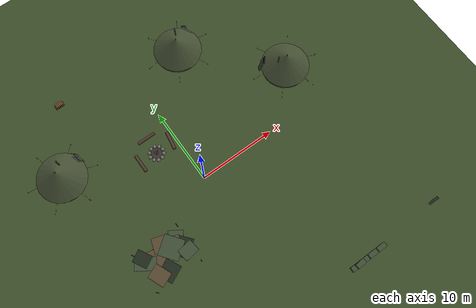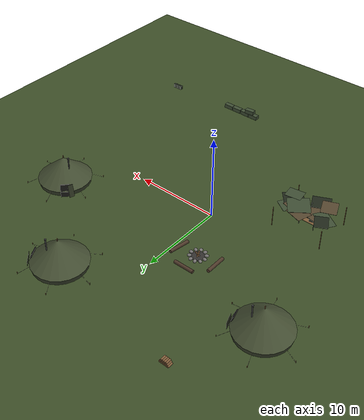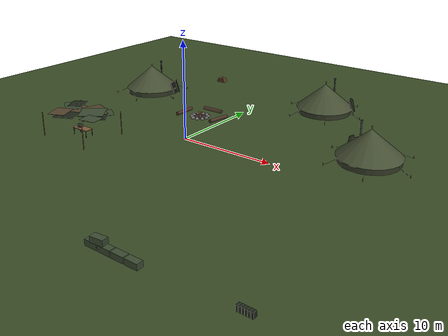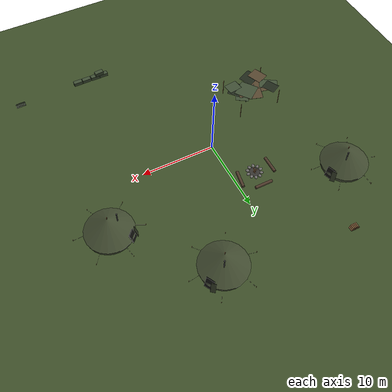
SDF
<sdf version="1.11">
 <world name="hive_base">
  <model name="ground_plane">
   <static>true</static>
   <link name="link">
    <collision name="collision">
     <geometry><plane><normal>0 0 1</normal><size>1000 1000</size></plane></geometry>
     <surface><friction><ode><mu>1.0</mu><mu2>1.0</mu2></ode></friction></surface>
    </collision>
    <visual name="visual">
     <geometry><plane><normal>0 0 1</normal><size>1000 1000</size></plane></geometry>
     <material>
      <ambient>0.23 0.3 0.15 1</ambient>
      <diffuse>0.23 0.3 0.15 1</diffuse>
      <specular>0.05 0.05 0.05 1</specular>
     </material>
    </visual>
   </link>
  </model>
  <model name="tent_1">
   <static>true</static>
   <pose>-14 10 0 0 0 0.3</pose>
   <link name="link">
    <visual name="v1">
     <pose>0 0 0.3 0 0 0</pose>
     <geometry><cylinder><radius>3</radius><length>0.6</length></cylinder></geometry>
     <material>
      <ambient>0.2 0.23 0.15 1</ambient>
      <diffuse>0.2 0.23 0.15 1</diffuse>
      <specular>0.05 0.05 0.05 1</specular>
     </material>
    </visual>
    <collision name="c1">
     <pose>0 0 0.3 0 0 0</pose>
     <geometry><cylinder><radius>3</radius><length>0.6</length></cylinder></geometry>
    </collision>
    <visual name="v2">
     <pose>0 0 1.9 0 0 0</pose>
     <geometry><cone><radius>3.15</radius><length>2.6</length></cone></geometry>
     <material>
      <ambient>0.27 0.31 0.2 1</ambient>
      <diffuse>0.27 0.31 0.2 1</diffuse>
      <specular>0.05 0.05 0.05 1</specular>
     </material>
    </visual>
    <collision name="c2">
     <pose>0 0 1.9 0 0 0</pose>
     <geometry><cylinder><radius>1.89</radius><length>2.6</length></cylinder></geometry>
    </collision>
    <visual name="v3">
     <pose>0 0 3.3 0 0 0</pose>
     <geometry><cylinder><radius>0.05</radius><length>0.4</length></cylinder></geometry>
     <material>
      <ambient>0.5 0.36 0.22 1</ambient>
      <diffuse>0.5 0.36 0.22 1</diffuse>
      <specular>0.05 0.05 0.05 1</specular>
     </material>
    </visual>
    <visual name="v4">
     <pose>1 0.6 3 0 0 0</pose>
     <geometry><cylinder><radius>0.07</radius><length>1.4</length></cylinder></geometry>
     <material>
      <ambient>0.25 0.25 0.25 1</ambient>
      <diffuse>0.25 0.25 0.25 1</diffuse>
      <specular>0.05 0.05 0.05 1</specular>
     </material>
    </visual>
    <visual name="v5">
     <pose>1 0.6 3.7 0 0 0</pose>
     <geometry><cylinder><radius>0.1</radius><length>0.12</length></cylinder></geometry>
     <material>
      <ambient>0.25 0.25 0.25 1</ambient>
      <diffuse>0.25 0.25 0.25 1</diffuse>
      <specular>0.05 0.05 0.05 1</specular>
     </material>
    </visual>
    <visual name="v6">
     <pose>2.95 0 0.7 0 -0.35 0</pose>
     <geometry><box><size>0.12 1.1 1.4</size></box></geometry>
     <material>
      <ambient>0.08 0.08 0.07 1</ambient>
      <diffuse>0.08 0.08 0.07 1</diffuse>
      <specular>0.05 0.05 0.05 1</specular>
     </material>
    </visual>
    <visual name="v7">
     <pose>3.15 0.65 0.75 0 -0.25 0.4</pose>
     <geometry><box><size>0.05 0.6 1.5</size></box></geometry>
     <material>
      <ambient>0.2 0.23 0.15 1</ambient>
      <diffuse>0.2 0.23 0.15 1</diffuse>
      <specular>0.05 0.05 0.05 1</specular>
     </material>
    </visual>
    <visual name="v8">
     <pose>3.204 1.85 0.3 0 1.166 3.665</pose>
     <geometry><cylinder><radius>0.01</radius><length>1.523</length></cylinder></geometry>
     <material>
      <ambient>0.6 0.6 0.5 1</ambient>
      <diffuse>0.6 0.6 0.5 1</diffuse>
      <specular>0.05 0.05 0.05 1</specular>
     </material>
     <cast_shadows>false</cast_shadows>
    </visual>
    <visual name="v9">
     <pose>3.811 2.2 0.1 0 0 0</pose>
     <geometry><cylinder><radius>0.03</radius><length>0.25</length></cylinder></geometry>
     <material>
      <ambient>0.5 0.36 0.22 1</ambient>
      <diffuse>0.5 0.36 0.22 1</diffuse>
      <specular>0.05 0.05 0.05 1</specular>
     </material>
     <cast_shadows>false</cast_shadows>
    </visual>
    <visual name="v10">
     <pose>0 3.7 0.3 0 1.166 4.712</pose>
     <geometry><cylinder><radius>0.01</radius><length>1.523</length></cylinder></geometry>
     <material>
      <ambient>0.6 0.6 0.5 1</ambient>
      <diffuse>0.6 0.6 0.5 1</diffuse>
      <specular>0.05 0.05 0.05 1</specular>
     </material>
     <cast_shadows>false</cast_shadows>
    </visual>
    <visual name="v11">
     <pose>0 4.4 0.1 0 0 0</pose>
     <geometry><cylinder><radius>0.03</radius><length>0.25</length></cylinder></geometry>
     <material>
      <ambient>0.5 0.36 0.22 1</ambient>
      <diffuse>0.5 0.36 0.22 1</diffuse>
      <specular>0.05 0.05 0.05 1</specular>
     </material>
     <cast_shadows>false</cast_shadows>
    </visual>
    <visual name="v12">
     <pose>-3.204 1.85 0.3 0 1.166 5.76</pose>
     <geometry><cylinder><radius>0.01</radius><length>1.523</length></cylinder></geometry>
     <material>
      <ambient>0.6 0.6 0.5 1</ambient>
      <diffuse>0.6 0.6 0.5 1</diffuse>
      <specular>0.05 0.05 0.05 1</specular>
     </material>
     <cast_shadows>false</cast_shadows>
    </visual>
    <visual name="v13">
     <pose>-3.811 2.2 0.1 0 0 0</pose>
     <geometry><cylinder><radius>0.03</radius><length>0.25</length></cylinder></geometry>
     <material>
      <ambient>0.5 0.36 0.22 1</ambient>
      <diffuse>0.5 0.36 0.22 1</diffuse>
      <specular>0.05 0.05 0.05 1</specular>
     </material>
     <cast_shadows>false</cast_shadows>
    </visual>
    <visual name="v14">
     <pose>-3.204 -1.85 0.3 0 1.166 6.807</pose>
     <geometry><cylinder><radius>0.01</radius><length>1.523</length></cylinder></geometry>
     <material>
      <ambient>0.6 0.6 0.5 1</ambient>
      <diffuse>0.6 0.6 0.5 1</diffuse>
      <specular>0.05 0.05 0.05 1</specular>
     </material>
     <cast_shadows>false</cast_shadows>
    </visual>
    <visual name="v15">
     <pose>-3.811 -2.2 0.1 0 0 0</pose>
     <geometry><cylinder><radius>0.03</radius><length>0.25</length></cylinder></geometry>
     <material>
      <ambient>0.5 0.36 0.22 1</ambient>
      <diffuse>0.5 0.36 0.22 1</diffuse>
      <specular>0.05 0.05 0.05 1</specular>
     </material>
     <cast_shadows>false</cast_shadows>
    </visual>
    <visual name="v16">
     <pose>-0 -3.7 0.3 0 1.166 7.854</pose>
     <geometry><cylinder><radius>0.01</radius><length>1.523</length></cylinder></geometry>
     <material>
      <ambient>0.6 0.6 0.5 1</ambient>
      <diffuse>0.6 0.6 0.5 1</diffuse>
      <specular>0.05 0.05 0.05 1</specular>
     </material>
     <cast_shadows>false</cast_shadows>
    </visual>
    <visual name="v17">
     <pose>-0 -4.4 0.1 0 0 0</pose>
     <geometry><cylinder><radius>0.03</radius><length>0.25</length></cylinder></geometry>
     <material>
      <ambient>0.5 0.36 0.22 1</ambient>
      <diffuse>0.5 0.36 0.22 1</diffuse>
      <specular>0.05 0.05 0.05 1</specular>
     </material>
     <cast_shadows>false</cast_shadows>
    </visual>
    <visual name="v18">
     <pose>3.204 -1.85 0.3 0 1.166 8.901</pose>
     <geometry><cylinder><radius>0.01</radius><length>1.523</length></cylinder></geometry>
     <material>
      <ambient>0.6 0.6 0.5 1</ambient>
      <diffuse>0.6 0.6 0.5 1</diffuse>
      <specular>0.05 0.05 0.05 1</specular>
     </material>
     <cast_shadows>false</cast_shadows>
    </visual>
    <visual name="v19">
     <pose>3.811 -2.2 0.1 0 0 0</pose>
     <geometry><cylinder><radius>0.03</radius><length>0.25</length></cylinder></geometry>
     <material>
      <ambient>0.5 0.36 0.22 1</ambient>
      <diffuse>0.5 0.36 0.22 1</diffuse>
      <specular>0.05 0.05 0.05 1</specular>
     </material>
     <cast_shadows>false</cast_shadows>
    </visual>
   </link>
  </model>
  <model name="tent_3">
   <static>true</static>
   <pose>7 16 0 0 0 0.5</pose>
   <link name="link">
    <visual name="v1">
     <pose>0 0 0.3 0 0 0</pose>
     <geometry><cylinder><radius>3</radius><length>0.6</length></cylinder></geometry>
     <material>
      <ambient>0.2 0.23 0.15 1</ambient>
      <diffuse>0.2 0.23 0.15 1</diffuse>
      <specular>0.05 0.05 0.05 1</specular>
     </material>
    </visual>
    <collision name="c1">
     <pose>0 0 0.3 0 0 0</pose>
     <geometry><cylinder><radius>3</radius><length>0.6</length></cylinder></geometry>
    </collision>
    <visual name="v2">
     <pose>0 0 1.9 0 0 0</pose>
     <geometry><cone><radius>3.15</radius><length>2.6</length></cone></geometry>
     <material>
      <ambient>0.27 0.31 0.2 1</ambient>
      <diffuse>0.27 0.31 0.2 1</diffuse>
      <specular>0.05 0.05 0.05 1</specular>
     </material>
    </visual>
    <collision name="c2">
     <pose>0 0 1.9 0 0 0</pose>
     <geometry><cylinder><radius>1.89</radius><length>2.6</length></cylinder></geometry>
    </collision>
    <visual name="v3">
     <pose>0 0 3.3 0 0 0</pose>
     <geometry><cylinder><radius>0.05</radius><length>0.4</length></cylinder></geometry>
     <material>
      <ambient>0.5 0.36 0.22 1</ambient>
      <diffuse>0.5 0.36 0.22 1</diffuse>
      <specular>0.05 0.05 0.05 1</specular>
     </material>
    </visual>
    <visual name="v4">
     <pose>1 0.6 3 0 0 0</pose>
     <geometry><cylinder><radius>0.07</radius><length>1.4</length></cylinder></geometry>
     <material>
      <ambient>0.25 0.25 0.25 1</ambient>
      <diffuse>0.25 0.25 0.25 1</diffuse>
      <specular>0.05 0.05 0.05 1</specular>
     </material>
    </visual>
    <visual name="v5">
     <pose>1 0.6 3.7 0 0 0</pose>
     <geometry><cylinder><radius>0.1</radius><length>0.12</length></cylinder></geometry>
     <material>
      <ambient>0.25 0.25 0.25 1</ambient>
      <diffuse>0.25 0.25 0.25 1</diffuse>
      <specular>0.05 0.05 0.05 1</specular>
     </material>
    </visual>
    <visual name="v6">
     <pose>2.95 0 0.7 0 -0.35 0</pose>
     <geometry><box><size>0.12 1.1 1.4</size></box></geometry>
     <material>
      <ambient>0.08 0.08 0.07 1</ambient>
      <diffuse>0.08 0.08 0.07 1</diffuse>
      <specular>0.05 0.05 0.05 1</specular>
     </material>
    </visual>
    <visual name="v7">
     <pose>3.15 0.65 0.75 0 -0.25 0.4</pose>
     <geometry><box><size>0.05 0.6 1.5</size></box></geometry>
     <material>
      <ambient>0.2 0.23 0.15 1</ambient>
      <diffuse>0.2 0.23 0.15 1</diffuse>
      <specular>0.05 0.05 0.05 1</specular>
     </material>
    </visual>
    <visual name="v8">
     <pose>3.204 1.85 0.3 0 1.166 3.665</pose>
     <geometry><cylinder><radius>0.01</radius><length>1.523</length></cylinder></geometry>
     <material>
      <ambient>0.6 0.6 0.5 1</ambient>
      <diffuse>0.6 0.6 0.5 1</diffuse>
      <specular>0.05 0.05 0.05 1</specular>
     </material>
     <cast_shadows>false</cast_shadows>
    </visual>
    <visual name="v9">
     <pose>3.811 2.2 0.1 0 0 0</pose>
     <geometry><cylinder><radius>0.03</radius><length>0.25</length></cylinder></geometry>
     <material>
      <ambient>0.5 0.36 0.22 1</ambient>
      <diffuse>0.5 0.36 0.22 1</diffuse>
      <specular>0.05 0.05 0.05 1</specular>
     </material>
     <cast_shadows>false</cast_shadows>
    </visual>
    <visual name="v10">
     <pose>0 3.7 0.3 0 1.166 4.712</pose>
     <geometry><cylinder><radius>0.01</radius><length>1.523</length></cylinder></geometry>
     <material>
      <ambient>0.6 0.6 0.5 1</ambient>
      <diffuse>0.6 0.6 0.5 1</diffuse>
      <specular>0.05 0.05 0.05 1</specular>
     </material>
     <cast_shadows>false</cast_shadows>
    </visual>
    <visual name="v11">
     <pose>0 4.4 0.1 0 0 0</pose>
     <geometry><cylinder><radius>0.03</radius><length>0.25</length></cylinder></geometry>
     <material>
      <ambient>0.5 0.36 0.22 1</ambient>
      <diffuse>0.5 0.36 0.22 1</diffuse>
      <specular>0.05 0.05 0.05 1</specular>
     </material>
     <cast_shadows>false</cast_shadows>
    </visual>
    <visual name="v12">
     <pose>-3.204 1.85 0.3 0 1.166 5.76</pose>
     <geometry><cylinder><radius>0.01</radius><length>1.523</length></cylinder></geometry>
     <material>
      <ambient>0.6 0.6 0.5 1</ambient>
      <diffuse>0.6 0.6 0.5 1</diffuse>
      <specular>0.05 0.05 0.05 1</specular>
     </material>
     <cast_shadows>false</cast_shadows>
    </visual>
    <visual name="v13">
     <pose>-3.811 2.2 0.1 0 0 0</pose>
     <geometry><cylinder><radius>0.03</radius><length>0.25</length></cylinder></geometry>
     <material>
      <ambient>0.5 0.36 0.22 1</ambient>
      <diffuse>0.5 0.36 0.22 1</diffuse>
      <specular>0.05 0.05 0.05 1</specular>
     </material>
     <cast_shadows>false</cast_shadows>
    </visual>
    <visual name="v14">
     <pose>-3.204 -1.85 0.3 0 1.166 6.807</pose>
     <geometry><cylinder><radius>0.01</radius><length>1.523</length></cylinder></geometry>
     <material>
      <ambient>0.6 0.6 0.5 1</ambient>
      <diffuse>0.6 0.6 0.5 1</diffuse>
      <specular>0.05 0.05 0.05 1</specular>
     </material>
     <cast_shadows>false</cast_shadows>
    </visual>
    <visual name="v15">
     <pose>-3.811 -2.2 0.1 0 0 0</pose>
     <geometry><cylinder><radius>0.03</radius><length>0.25</length></cylinder></geometry>
     <material>
      <ambient>0.5 0.36 0.22 1</ambient>
      <diffuse>0.5 0.36 0.22 1</diffuse>
      <specular>0.05 0.05 0.05 1</specular>
     </material>
     <cast_shadows>false</cast_shadows>
    </visual>
    <visual name="v16">
     <pose>-0 -3.7 0.3 0 1.166 7.854</pose>
     <geometry><cylinder><radius>0.01</radius><length>1.523</length></cylinder></geometry>
     <material>
      <ambient>0.6 0.6 0.5 1</ambient>
      <diffuse>0.6 0.6 0.5 1</diffuse>
      <specular>0.05 0.05 0.05 1</specular>
     </material>
     <cast_shadows>false</cast_shadows>
    </visual>
    <visual name="v17">
     <pose>-0 -4.4 0.1 0 0 0</pose>
     <geometry><cylinder><radius>0.03</radius><length>0.25</length></cylinder></geometry>
     <material>
      <ambient>0.5 0.36 0.22 1</ambient>
      <diffuse>0.5 0.36 0.22 1</diffuse>
      <specular>0.05 0.05 0.05 1</specular>
     </material>
     <cast_shadows>false</cast_shadows>
    </visual>
    <visual name="v18">
     <pose>3.204 -1.85 0.3 0 1.166 8.901</pose>
     <geometry><cylinder><radius>0.01</radius><length>1.523</length></cylinder></geometry>
     <material>
      <ambient>0.6 0.6 0.5 1</ambient>
      <diffuse>0.6 0.6 0.5 1</diffuse>
      <specular>0.05 0.05 0.05 1</specular>
     </material>
     <cast_shadows>false</cast_shadows>
    </visual>
    <visual name="v19">
     <pose>3.811 -2.2 0.1 0 0 0</pose>
     <geometry><cylinder><radius>0.03</radius><length>0.25</length></cylinder></geometry>
     <material>
      <ambient>0.5 0.36 0.22 1</ambient>
      <diffuse>0.5 0.36 0.22 1</diffuse>
      <specular>0.05 0.05 0.05 1</specular>
     </material>
     <cast_shadows>false</cast_shadows>
    </visual>
   </link>
  </model>
  <model name="tent_5">
   <static>true</static>
   <pose>17 6 0 0 0 2.4</pose>
   <link name="link">
    <visual name="v1">
     <pose>0 0 0.3 0 0 0</pose>
     <geometry><cylinder><radius>3</radius><length>0.6</length></cylinder></geometry>
     <material>
      <ambient>0.2 0.23 0.15 1</ambient>
      <diffuse>0.2 0.23 0.15 1</diffuse>
      <specular>0.05 0.05 0.05 1</specular>
     </material>
    </visual>
    <collision name="c1">
     <pose>0 0 0.3 0 0 0</pose>
     <geometry><cylinder><radius>3</radius><length>0.6</length></cylinder></geometry>
    </collision>
    <visual name="v2">
     <pose>0 0 1.9 0 0 0</pose>
     <geometry><cone><radius>3.15</radius><length>2.6</length></cone></geometry>
     <material>
      <ambient>0.27 0.31 0.2 1</ambient>
      <diffuse>0.27 0.31 0.2 1</diffuse>
      <specular>0.05 0.05 0.05 1</specular>
     </material>
    </visual>
    <collision name="c2">
     <pose>0 0 1.9 0 0 0</pose>
     <geometry><cylinder><radius>1.89</radius><length>2.6</length></cylinder></geometry>
    </collision>
    <visual name="v3">
     <pose>0 0 3.3 0 0 0</pose>
     <geometry><cylinder><radius>0.05</radius><length>0.4</length></cylinder></geometry>
     <material>
      <ambient>0.5 0.36 0.22 1</ambient>
      <diffuse>0.5 0.36 0.22 1</diffuse>
      <specular>0.05 0.05 0.05 1</specular>
     </material>
    </visual>
    <visual name="v4">
     <pose>1 0.6 3 0 0 0</pose>
     <geometry><cylinder><radius>0.07</radius><length>1.4</length></cylinder></geometry>
     <material>
      <ambient>0.25 0.25 0.25 1</ambient>
      <diffuse>0.25 0.25 0.25 1</diffuse>
      <specular>0.05 0.05 0.05 1</specular>
     </material>
    </visual>
    <visual name="v5">
     <pose>1 0.6 3.7 0 0 0</pose>
     <geometry><cylinder><radius>0.1</radius><length>0.12</length></cylinder></geometry>
     <material>
      <ambient>0.25 0.25 0.25 1</ambient>
      <diffuse>0.25 0.25 0.25 1</diffuse>
      <specular>0.05 0.05 0.05 1</specular>
     </material>
    </visual>
    <visual name="v6">
     <pose>2.95 0 0.7 0 -0.35 0</pose>
     <geometry><box><size>0.12 1.1 1.4</size></box></geometry>
     <material>
      <ambient>0.08 0.08 0.07 1</ambient>
      <diffuse>0.08 0.08 0.07 1</diffuse>
      <specular>0.05 0.05 0.05 1</specular>
     </material>
    </visual>
    <visual name="v7">
     <pose>3.15 0.65 0.75 0 -0.25 0.4</pose>
     <geometry><box><size>0.05 0.6 1.5</size></box></geometry>
     <material>
      <ambient>0.2 0.23 0.15 1</ambient>
      <diffuse>0.2 0.23 0.15 1</diffuse>
      <specular>0.05 0.05 0.05 1</specular>
     </material>
    </visual>
    <visual name="v8">
     <pose>3.204 1.85 0.3 0 1.166 3.665</pose>
     <geometry><cylinder><radius>0.01</radius><length>1.523</length></cylinder></geometry>
     <material>
      <ambient>0.6 0.6 0.5 1</ambient>
      <diffuse>0.6 0.6 0.5 1</diffuse>
      <specular>0.05 0.05 0.05 1</specular>
     </material>
     <cast_shadows>false</cast_shadows>
    </visual>
    <visual name="v9">
     <pose>3.811 2.2 0.1 0 0 0</pose>
     <geometry><cylinder><radius>0.03</radius><length>0.25</length></cylinder></geometry>
     <material>
      <ambient>0.5 0.36 0.22 1</ambient>
      <diffuse>0.5 0.36 0.22 1</diffuse>
      <specular>0.05 0.05 0.05 1</specular>
     </material>
     <cast_shadows>false</cast_shadows>
    </visual>
    <visual name="v10">
     <pose>0 3.7 0.3 0 1.166 4.712</pose>
     <geometry><cylinder><radius>0.01</radius><length>1.523</length></cylinder></geometry>
     <material>
      <ambient>0.6 0.6 0.5 1</ambient>
      <diffuse>0.6 0.6 0.5 1</diffuse>
      <specular>0.05 0.05 0.05 1</specular>
     </material>
     <cast_shadows>false</cast_shadows>
    </visual>
    <visual name="v11">
     <pose>0 4.4 0.1 0 0 0</pose>
     <geometry><cylinder><radius>0.03</radius><length>0.25</length></cylinder></geometry>
     <material>
      <ambient>0.5 0.36 0.22 1</ambient>
      <diffuse>0.5 0.36 0.22 1</diffuse>
      <specular>0.05 0.05 0.05 1</specular>
     </material>
     <cast_shadows>false</cast_shadows>
    </visual>
    <visual name="v12">
     <pose>-3.204 1.85 0.3 0 1.166 5.76</pose>
     <geometry><cylinder><radius>0.01</radius><length>1.523</length></cylinder></geometry>
     <material>
      <ambient>0.6 0.6 0.5 1</ambient>
      <diffuse>0.6 0.6 0.5 1</diffuse>
      <specular>0.05 0.05 0.05 1</specular>
     </material>
     <cast_shadows>false</cast_shadows>
    </visual>
    <visual name="v13">
     <pose>-3.811 2.2 0.1 0 0 0</pose>
     <geometry><cylinder><radius>0.03</radius><length>0.25</length></cylinder></geometry>
     <material>
      <ambient>0.5 0.36 0.22 1</ambient>
      <diffuse>0.5 0.36 0.22 1</diffuse>
      <specular>0.05 0.05 0.05 1</specular>
     </material>
     <cast_shadows>false</cast_shadows>
    </visual>
    <visual name="v14">
     <pose>-3.204 -1.85 0.3 0 1.166 6.807</pose>
     <geometry><cylinder><radius>0.01</radius><length>1.523</length></cylinder></geometry>
     <material>
      <ambient>0.6 0.6 0.5 1</ambient>
      <diffuse>0.6 0.6 0.5 1</diffuse>
      <specular>0.05 0.05 0.05 1</specular>
     </material>
     <cast_shadows>false</cast_shadows>
    </visual>
    <visual name="v15">
     <pose>-3.811 -2.2 0.1 0 0 0</pose>
     <geometry><cylinder><radius>0.03</radius><length>0.25</length></cylinder></geometry>
     <material>
      <ambient>0.5 0.36 0.22 1</ambient>
      <diffuse>0.5 0.36 0.22 1</diffuse>
      <specular>0.05 0.05 0.05 1</specular>
     </material>
     <cast_shadows>false</cast_shadows>
    </visual>
    <visual name="v16">
     <pose>-0 -3.7 0.3 0 1.166 7.854</pose>
     <geometry><cylinder><radius>0.01</radius><length>1.523</length></cylinder></geometry>
     <material>
      <ambient>0.6 0.6 0.5 1</ambient>
      <diffuse>0.6 0.6 0.5 1</diffuse>
      <specular>0.05 0.05 0.05 1</specular>
     </material>
     <cast_shadows>false</cast_shadows>
    </visual>
    <visual name="v17">
     <pose>-0 -4.4 0.1 0 0 0</pose>
     <geometry><cylinder><radius>0.03</radius><length>0.25</length></cylinder></geometry>
     <material>
      <ambient>0.5 0.36 0.22 1</ambient>
      <diffuse>0.5 0.36 0.22 1</diffuse>
      <specular>0.05 0.05 0.05 1</specular>
     </material>
     <cast_shadows>false</cast_shadows>
    </visual>
    <visual name="v18">
     <pose>3.204 -1.85 0.3 0 1.166 8.901</pose>
     <geometry><cylinder><radius>0.01</radius><length>1.523</length></cylinder></geometry>
     <material>
      <ambient>0.6 0.6 0.5 1</ambient>
      <diffuse>0.6 0.6 0.5 1</diffuse>
      <specular>0.05 0.05 0.05 1</specular>
     </material>
     <cast_shadows>false</cast_shadows>
    </visual>
    <visual name="v19">
     <pose>3.811 -2.2 0.1 0 0 0</pose>
     <geometry><cylinder><radius>0.03</radius><length>0.25</length></cylinder></geometry>
     <material>
      <ambient>0.5 0.36 0.22 1</ambient>
      <diffuse>0.5 0.36 0.22 1</diffuse>
      <specular>0.05 0.05 0.05 1</specular>
     </material>
     <cast_shadows>false</cast_shadows>
    </visual>
   </link>
  </model>
  <model name="camp_gear">
   <static>true</static>
   <link name="link">
    <visual name="v1">
     <pose>-2.1 6 0.08 0 0 0</pose>
     <geometry><ellipsoid><radii>0.25 0.2 0.15</radii></ellipsoid></geometry>
     <material>
      <ambient>0.45 0.44 0.43 1</ambient>
      <diffuse>0.45 0.44 0.43 1</diffuse>
      <specular>0.05 0.05 0.05 1</specular>
     </material>
    </visual>
    <visual name="v2">
     <pose>-2.272 6.529 0.08 0 0 0.628</pose>
     <geometry><ellipsoid><radii>0.25 0.2 0.15</radii></ellipsoid></geometry>
     <material>
      <ambient>0.45 0.44 0.43 1</ambient>
      <diffuse>0.45 0.44 0.43 1</diffuse>
      <specular>0.05 0.05 0.05 1</specular>
     </material>
    </visual>
    <visual name="v3">
     <pose>-2.722 6.856 0.08 0 0 1.257</pose>
     <geometry><ellipsoid><radii>0.25 0.2 0.15</radii></ellipsoid></geometry>
     <material>
      <ambient>0.45 0.44 0.43 1</ambient>
      <diffuse>0.45 0.44 0.43 1</diffuse>
      <specular>0.05 0.05 0.05 1</specular>
     </material>
    </visual>
    <visual name="v4">
     <pose>-3.278 6.856 0.08 0 0 1.885</pose>
     <geometry><ellipsoid><radii>0.25 0.2 0.15</radii></ellipsoid></geometry>
     <material>
      <ambient>0.45 0.44 0.43 1</ambient>
      <diffuse>0.45 0.44 0.43 1</diffuse>
      <specular>0.05 0.05 0.05 1</specular>
     </material>
    </visual>
    <visual name="v5">
     <pose>-3.728 6.529 0.08 0 0 2.513</pose>
     <geometry><ellipsoid><radii>0.25 0.2 0.15</radii></ellipsoid></geometry>
     <material>
      <ambient>0.45 0.44 0.43 1</ambient>
      <diffuse>0.45 0.44 0.43 1</diffuse>
      <specular>0.05 0.05 0.05 1</specular>
     </material>
    </visual>
    <visual name="v6">
     <pose>-3.9 6 0.08 0 0 3.142</pose>
     <geometry><ellipsoid><radii>0.25 0.2 0.15</radii></ellipsoid></geometry>
     <material>
      <ambient>0.45 0.44 0.43 1</ambient>
      <diffuse>0.45 0.44 0.43 1</diffuse>
      <specular>0.05 0.05 0.05 1</specular>
     </material>
    </visual>
    <visual name="v7">
     <pose>-3.728 5.471 0.08 0 0 3.77</pose>
     <geometry><ellipsoid><radii>0.25 0.2 0.15</radii></ellipsoid></geometry>
     <material>
      <ambient>0.45 0.44 0.43 1</ambient>
      <diffuse>0.45 0.44 0.43 1</diffuse>
      <specular>0.05 0.05 0.05 1</specular>
     </material>
    </visual>
    <visual name="v8">
     <pose>-3.278 5.144 0.08 0 0 4.398</pose>
     <geometry><ellipsoid><radii>0.25 0.2 0.15</radii></ellipsoid></geometry>
     <material>
      <ambient>0.45 0.44 0.43 1</ambient>
      <diffuse>0.45 0.44 0.43 1</diffuse>
      <specular>0.05 0.05 0.05 1</specular>
     </material>
    </visual>
    <visual name="v9">
     <pose>-2.722 5.144 0.08 0 0 5.027</pose>
     <geometry><ellipsoid><radii>0.25 0.2 0.15</radii></ellipsoid></geometry>
     <material>
      <ambient>0.45 0.44 0.43 1</ambient>
      <diffuse>0.45 0.44 0.43 1</diffuse>
      <specular>0.05 0.05 0.05 1</specular>
     </material>
    </visual>
    <visual name="v10">
     <pose>-2.272 5.471 0.08 0 0 5.655</pose>
     <geometry><ellipsoid><radii>0.25 0.2 0.15</radii></ellipsoid></geometry>
     <material>
      <ambient>0.45 0.44 0.43 1</ambient>
      <diffuse>0.45 0.44 0.43 1</diffuse>
      <specular>0.05 0.05 0.05 1</specular>
     </material>
    </visual>
    <visual name="v11">
     <pose>-3 6 0.015 0 0 0</pose>
     <geometry><cylinder><radius>0.75</radius><length>0.03</length></cylinder></geometry>
     <material>
      <ambient>0.2 0.19 0.18 1</ambient>
      <diffuse>0.2 0.19 0.18 1</diffuse>
      <specular>0.05 0.05 0.05 1</specular>
     </material>
     <cast_shadows>false</cast_shadows>
    </visual>
    <visual name="v12">
     <pose>-3 6 0.2 0.6 0 0</pose>
     <geometry><cylinder><radius>0.08</radius><length>0.9</length></cylinder></geometry>
     <material>
      <ambient>0.5 0.36 0.22 1</ambient>
      <diffuse>0.5 0.36 0.22 1</diffuse>
      <specular>0.05 0.05 0.05 1</specular>
     </material>
    </visual>
    <visual name="v13">
     <pose>-3 6 0.2 -0.303 0.518 0</pose>
     <geometry><cylinder><radius>0.08</radius><length>0.9</length></cylinder></geometry>
     <material>
      <ambient>0.5 0.36 0.22 1</ambient>
      <diffuse>0.5 0.36 0.22 1</diffuse>
      <specular>0.05 0.05 0.05 1</specular>
     </material>
    </visual>
    <visual name="v14">
     <pose>-3 6 0.2 -0.294 -0.523 0</pose>
     <geometry><cylinder><radius>0.08</radius><length>0.9</length></cylinder></geometry>
     <material>
      <ambient>0.5 0.36 0.22 1</ambient>
      <diffuse>0.5 0.36 0.22 1</diffuse>
      <specular>0.05 0.05 0.05 1</specular>
     </material>
    </visual>
    <visual name="v15">
     <pose>-3 8.3 0.2 0 1.571 0</pose>
     <geometry><cylinder><radius>0.2</radius><length>2.4</length></cylinder></geometry>
     <material>
      <ambient>0.3 0.22 0.16 1</ambient>
      <diffuse>0.3 0.22 0.16 1</diffuse>
      <specular>0.05 0.05 0.05 1</specular>
     </material>
    </visual>
    <collision name="c15">
     <pose>-3 8.3 0.2 0 1.571 0</pose>
     <geometry><cylinder><radius>0.2</radius><length>2.4</length></cylinder></geometry>
    </collision>
    <visual name="v16">
     <pose>-5.3 6 0.2 0 1.571 1.57</pose>
     <geometry><cylinder><radius>0.2</radius><length>2.4</length></cylinder></geometry>
     <material>
      <ambient>0.3 0.22 0.16 1</ambient>
      <diffuse>0.3 0.22 0.16 1</diffuse>
      <specular>0.05 0.05 0.05 1</specular>
     </material>
    </visual>
    <collision name="c16">
     <pose>-5.3 6 0.2 0 1.571 1.57</pose>
     <geometry><cylinder><radius>0.2</radius><length>2.4</length></cylinder></geometry>
    </collision>
    <visual name="v17">
     <pose>-0.7 6.3 0.2 0 1.571 1.4</pose>
     <geometry><cylinder><radius>0.2</radius><length>2.4</length></cylinder></geometry>
     <material>
      <ambient>0.3 0.22 0.16 1</ambient>
      <diffuse>0.3 0.22 0.16 1</diffuse>
      <specular>0.05 0.05 0.05 1</specular>
     </material>
    </visual>
    <collision name="c17">
     <pose>-0.7 6.3 0.2 0 1.571 1.4</pose>
     <geometry><cylinder><radius>0.2</radius><length>2.4</length></cylinder></geometry>
    </collision>
    <visual name="v18">
     <pose>-10 18.5 0.1 1.571 0 0</pose>
     <geometry><cylinder><radius>0.1</radius><length>0.6</length></cylinder></geometry>
     <material>
      <ambient>0.5 0.36 0.22 1</ambient>
      <diffuse>0.5 0.36 0.22 1</diffuse>
      <specular>0.05 0.05 0.05 1</specular>
     </material>
    </visual>
    <visual name="v19">
     <pose>-9.8 18.5 0.1 1.571 0 0</pose>
     <geometry><cylinder><radius>0.1</radius><length>0.6</length></cylinder></geometry>
     <material>
      <ambient>0.5 0.36 0.22 1</ambient>
      <diffuse>0.5 0.36 0.22 1</diffuse>
      <specular>0.05 0.05 0.05 1</specular>
     </material>
    </visual>
    <visual name="v20">
     <pose>-9.6 18.5 0.1 1.571 0 0</pose>
     <geometry><cylinder><radius>0.1</radius><length>0.6</length></cylinder></geometry>
     <material>
      <ambient>0.5 0.36 0.22 1</ambient>
      <diffuse>0.5 0.36 0.22 1</diffuse>
      <specular>0.05 0.05 0.05 1</specular>
     </material>
    </visual>
    <visual name="v21">
     <pose>-9.4 18.5 0.1 1.571 0 0</pose>
     <geometry><cylinder><radius>0.1</radius><length>0.6</length></cylinder></geometry>
     <material>
      <ambient>0.5 0.36 0.22 1</ambient>
      <diffuse>0.5 0.36 0.22 1</diffuse>
      <specular>0.05 0.05 0.05 1</specular>
     </material>
    </visual>
    <visual name="v22">
     <pose>-9.2 18.5 0.1 1.571 0 0</pose>
     <geometry><cylinder><radius>0.1</radius><length>0.6</length></cylinder></geometry>
     <material>
      <ambient>0.5 0.36 0.22 1</ambient>
      <diffuse>0.5 0.36 0.22 1</diffuse>
      <specular>0.05 0.05 0.05 1</specular>
     </material>
    </visual>
    <visual name="v23">
     <pose>-9 18.5 0.1 1.571 0 0</pose>
     <geometry><cylinder><radius>0.1</radius><length>0.6</length></cylinder></geometry>
     <material>
      <ambient>0.5 0.36 0.22 1</ambient>
      <diffuse>0.5 0.36 0.22 1</diffuse>
      <specular>0.05 0.05 0.05 1</specular>
     </material>
    </visual>
    <visual name="v24">
     <pose>-9.9 18.5 0.28 1.571 0 0</pose>
     <geometry><cylinder><radius>0.1</radius><length>0.6</length></cylinder></geometry>
     <material>
      <ambient>0.5 0.36 0.22 1</ambient>
      <diffuse>0.5 0.36 0.22 1</diffuse>
      <specular>0.05 0.05 0.05 1</specular>
     </material>
    </visual>
    <visual name="v25">
     <pose>-9.7 18.5 0.28 1.571 0 0</pose>
     <geometry><cylinder><radius>0.1</radius><length>0.6</length></cylinder></geometry>
     <material>
      <ambient>0.5 0.36 0.22 1</ambient>
      <diffuse>0.5 0.36 0.22 1</diffuse>
      <specular>0.05 0.05 0.05 1</specular>
     </material>
    </visual>
    <visual name="v26">
     <pose>-9.5 18.5 0.28 1.571 0 0</pose>
     <geometry><cylinder><radius>0.1</radius><length>0.6</length></cylinder></geometry>
     <material>
      <ambient>0.5 0.36 0.22 1</ambient>
      <diffuse>0.5 0.36 0.22 1</diffuse>
      <specular>0.05 0.05 0.05 1</specular>
     </material>
    </visual>
    <visual name="v27">
     <pose>-9.3 18.5 0.28 1.571 0 0</pose>
     <geometry><cylinder><radius>0.1</radius><length>0.6</length></cylinder></geometry>
     <material>
      <ambient>0.5 0.36 0.22 1</ambient>
      <diffuse>0.5 0.36 0.22 1</diffuse>
      <specular>0.05 0.05 0.05 1</specular>
     </material>
    </visual>
    <visual name="v28">
     <pose>-9.1 18.5 0.28 1.571 0 0</pose>
     <geometry><cylinder><radius>0.1</radius><length>0.6</length></cylinder></geometry>
     <material>
      <ambient>0.5 0.36 0.22 1</ambient>
      <diffuse>0.5 0.36 0.22 1</diffuse>
      <specular>0.05 0.05 0.05 1</specular>
     </material>
    </visual>
    <visual name="v29">
     <pose>-9.8 18.5 0.46 1.571 0 0</pose>
     <geometry><cylinder><radius>0.1</radius><length>0.6</length></cylinder></geometry>
     <material>
      <ambient>0.5 0.36 0.22 1</ambient>
      <diffuse>0.5 0.36 0.22 1</diffuse>
      <specular>0.05 0.05 0.05 1</specular>
     </material>
    </visual>
    <visual name="v30">
     <pose>-9.6 18.5 0.46 1.571 0 0</pose>
     <geometry><cylinder><radius>0.1</radius><length>0.6</length></cylinder></geometry>
     <material>
      <ambient>0.5 0.36 0.22 1</ambient>
      <diffuse>0.5 0.36 0.22 1</diffuse>
      <specular>0.05 0.05 0.05 1</specular>
     </material>
    </visual>
    <visual name="v31">
     <pose>-9.4 18.5 0.46 1.571 0 0</pose>
     <geometry><cylinder><radius>0.1</radius><length>0.6</length></cylinder></geometry>
     <material>
      <ambient>0.5 0.36 0.22 1</ambient>
      <diffuse>0.5 0.36 0.22 1</diffuse>
      <specular>0.05 0.05 0.05 1</specular>
     </material>
    </visual>
    <visual name="v32">
     <pose>-9.2 18.5 0.46 1.571 0 0</pose>
     <geometry><cylinder><radius>0.1</radius><length>0.6</length></cylinder></geometry>
     <material>
      <ambient>0.5 0.36 0.22 1</ambient>
      <diffuse>0.5 0.36 0.22 1</diffuse>
      <specular>0.05 0.05 0.05 1</specular>
     </material>
    </visual>
    <visual name="v33">
     <pose>8 -19 0.25 0 0 0</pose>
     <geometry><box><size>1.2 0.6 0.5</size></box></geometry>
     <material>
      <ambient>0.24 0.3 0.2 1</ambient>
      <diffuse>0.24 0.3 0.2 1</diffuse>
      <specular>0.05 0.05 0.05 1</specular>
     </material>
    </visual>
    <collision name="c33">
     <pose>8 -19 0.25 0 0 0</pose>
     <geometry><box><size>1.2 0.6 0.5</size></box></geometry>
    </collision>
    <visual name="v34">
     <pose>9.3 -19 0.25 0 0 0</pose>
     <geometry><box><size>1.2 0.6 0.5</size></box></geometry>
     <material>
      <ambient>0.24 0.3 0.2 1</ambient>
      <diffuse>0.24 0.3 0.2 1</diffuse>
      <specular>0.05 0.05 0.05 1</specular>
     </material>
    </visual>
    <collision name="c34">
     <pose>9.3 -19 0.25 0 0 0</pose>
     <geometry><box><size>1.2 0.6 0.5</size></box></geometry>
    </collision>
    <visual name="v35">
     <pose>10.6 -19 0.25 0 0 0</pose>
     <geometry><box><size>1.2 0.6 0.5</size></box></geometry>
     <material>
      <ambient>0.24 0.3 0.2 1</ambient>
      <diffuse>0.24 0.3 0.2 1</diffuse>
      <specular>0.05 0.05 0.05 1</specular>
     </material>
    </visual>
    <collision name="c35">
     <pose>10.6 -19 0.25 0 0 0</pose>
     <geometry><box><size>1.2 0.6 0.5</size></box></geometry>
    </collision>
    <visual name="v36">
     <pose>11.9 -19 0.25 0 0 0</pose>
     <geometry><box><size>1.2 0.6 0.5</size></box></geometry>
     <material>
      <ambient>0.24 0.3 0.2 1</ambient>
      <diffuse>0.24 0.3 0.2 1</diffuse>
      <specular>0.05 0.05 0.05 1</specular>
     </material>
    </visual>
    <collision name="c36">
     <pose>11.9 -19 0.25 0 0 0</pose>
     <geometry><box><size>1.2 0.6 0.5</size></box></geometry>
    </collision>
    <visual name="v37">
     <pose>8.6 -19 0.75 0 0 0.1</pose>
     <geometry><box><size>1.2 0.6 0.5</size></box></geometry>
     <material>
      <ambient>0.24 0.3 0.2 1</ambient>
      <diffuse>0.24 0.3 0.2 1</diffuse>
      <specular>0.05 0.05 0.05 1</specular>
     </material>
    </visual>
    <collision name="c37">
     <pose>8.6 -19 0.75 0 0 0.1</pose>
     <geometry><box><size>1.2 0.6 0.5</size></box></geometry>
    </collision>
    <visual name="v38">
     <pose>20 -18.5 0.235 0 0 0</pose>
     <geometry><box><size>0.17 0.35 0.47</size></box></geometry>
     <material>
      <ambient>0.12 0.15 0.1 1</ambient>
      <diffuse>0.12 0.15 0.1 1</diffuse>
      <specular>0.05 0.05 0.05 1</specular>
     </material>
    </visual>
    <collision name="c38">
     <pose>20 -18.5 0.235 0 0 0</pose>
     <geometry><box><size>0.17 0.35 0.47</size></box></geometry>
    </collision>
    <visual name="v39">
     <pose>20.22 -18.5 0.235 0 0 0</pose>
     <geometry><box><size>0.17 0.35 0.47</size></box></geometry>
     <material>
      <ambient>0.12 0.15 0.1 1</ambient>
      <diffuse>0.12 0.15 0.1 1</diffuse>
      <specular>0.05 0.05 0.05 1</specular>
     </material>
    </visual>
    <collision name="c39">
     <pose>20.22 -18.5 0.235 0 0 0</pose>
     <geometry><box><size>0.17 0.35 0.47</size></box></geometry>
    </collision>
    <visual name="v40">
     <pose>20.44 -18.5 0.235 0 0 0</pose>
     <geometry><box><size>0.17 0.35 0.47</size></box></geometry>
     <material>
      <ambient>0.12 0.15 0.1 1</ambient>
      <diffuse>0.12 0.15 0.1 1</diffuse>
      <specular>0.05 0.05 0.05 1</specular>
     </material>
    </visual>
    <collision name="c40">
     <pose>20.44 -18.5 0.235 0 0 0</pose>
     <geometry><box><size>0.17 0.35 0.47</size></box></geometry>
    </collision>
    <visual name="v41">
     <pose>20.66 -18.5 0.235 0 0 0</pose>
     <geometry><box><size>0.17 0.35 0.47</size></box></geometry>
     <material>
      <ambient>0.12 0.15 0.1 1</ambient>
      <diffuse>0.12 0.15 0.1 1</diffuse>
      <specular>0.05 0.05 0.05 1</specular>
     </material>
    </visual>
    <collision name="c41">
     <pose>20.66 -18.5 0.235 0 0 0</pose>
     <geometry><box><size>0.17 0.35 0.47</size></box></geometry>
    </collision>
    <visual name="v42">
     <pose>20.88 -18.5 0.235 0 0 0</pose>
     <geometry><box><size>0.17 0.35 0.47</size></box></geometry>
     <material>
      <ambient>0.12 0.15 0.1 1</ambient>
      <diffuse>0.12 0.15 0.1 1</diffuse>
      <specular>0.05 0.05 0.05 1</specular>
     </material>
    </visual>
    <collision name="c42">
     <pose>20.88 -18.5 0.235 0 0 0</pose>
     <geometry><box><size>0.17 0.35 0.47</size></box></geometry>
    </collision>
    <visual name="v43">
     <pose>21.1 -18.5 0.235 0 0 0</pose>
     <geometry><box><size>0.17 0.35 0.47</size></box></geometry>
     <material>
      <ambient>0.12 0.15 0.1 1</ambient>
      <diffuse>0.12 0.15 0.1 1</diffuse>
      <specular>0.05 0.05 0.05 1</specular>
     </material>
    </visual>
    <collision name="c43">
     <pose>21.1 -18.5 0.235 0 0 0</pose>
     <geometry><box><size>0.17 0.35 0.47</size></box></geometry>
    </collision>
    <visual name="v44">
     <pose>-12 -8 1.25 0 0 0</pose>
     <geometry><cylinder><radius>0.04</radius><length>2.5</length></cylinder></geometry>
     <material>
      <ambient>0.5 0.36 0.22 1</ambient>
      <diffuse>0.5 0.36 0.22 1</diffuse>
      <specular>0.05 0.05 0.05 1</specular>
     </material>
    </visual>
    <visual name="v45">
     <pose>-6 -8 1.25 0 0 0</pose>
     <geometry><cylinder><radius>0.04</radius><length>2.5</length></cylinder></geometry>
     <material>
      <ambient>0.5 0.36 0.22 1</ambient>
      <diffuse>0.5 0.36 0.22 1</diffuse>
      <specular>0.05 0.05 0.05 1</specular>
     </material>
    </visual>
    <visual name="v46">
     <pose>-12 -3 1.25 0 0 0</pose>
     <geometry><cylinder><radius>0.04</radius><length>2.5</length></cylinder></geometry>
     <material>
      <ambient>0.5 0.36 0.22 1</ambient>
      <diffuse>0.5 0.36 0.22 1</diffuse>
      <specular>0.05 0.05 0.05 1</specular>
     </material>
    </visual>
    <visual name="v47">
     <pose>-6 -3 1.25 0 0 0</pose>
     <geometry><cylinder><radius>0.04</radius><length>2.5</length></cylinder></geometry>
     <material>
      <ambient>0.5 0.36 0.22 1</ambient>
      <diffuse>0.5 0.36 0.22 1</diffuse>
      <specular>0.05 0.05 0.05 1</specular>
     </material>
    </visual>
    <visual name="v48">
     <pose>-7.909 -4.964 2.533 0 0 2.211</pose>
     <geometry><box><size>2.469 2.499 0.02</size></box></geometry>
     <material>
      <ambient>0.24 0.3 0.2 1</ambient>
      <diffuse>0.24 0.3 0.2 1</diffuse>
      <specular>0.05 0.05 0.05 1</specular>
     </material>
    </visual>
    <visual name="v49">
     <pose>-10.663 -6.732 2.525 0 0 0.396</pose>
     <geometry><box><size>1.768 2.059 0.02</size></box></geometry>
     <material>
      <ambient>0.33 0.27 0.18 1</ambient>
      <diffuse>0.33 0.27 0.18 1</diffuse>
      <specular>0.05 0.05 0.05 1</specular>
     </material>
    </visual>
    <visual name="v50">
     <pose>-6.724 -5.762 2.497 0 0 0.702</pose>
     <geometry><box><size>2.279 1.754 0.02</size></box></geometry>
     <material>
      <ambient>0.12 0.15 0.1 1</ambient>
      <diffuse>0.12 0.15 0.1 1</diffuse>
      <specular>0.05 0.05 0.05 1</specular>
     </material>
    </visual>
    <visual name="v51">
     <pose>-6.543 -6.352 2.536 0 0 0.145</pose>
     <geometry><box><size>1.883 1.521 0.02</size></box></geometry>
     <material>
      <ambient>0.24 0.3 0.2 1</ambient>
      <diffuse>0.24 0.3 0.2 1</diffuse>
      <specular>0.05 0.05 0.05 1</specular>
     </material>
    </visual>
    <visual name="v52">
     <pose>-8.561 -3.969 2.492 0 0 2.833</pose>
     <geometry><box><size>2.097 1.798 0.02</size></box></geometry>
     <material>
      <ambient>0.33 0.27 0.18 1</ambient>
      <diffuse>0.33 0.27 0.18 1</diffuse>
      <specular>0.05 0.05 0.05 1</specular>
     </material>
    </visual>
    <visual name="v53">
     <pose>-9.003 -4.852 2.45 0 0 1.686</pose>
     <geometry><box><size>2.106 2.102 0.02</size></box></geometry>
     <material>
      <ambient>0.12 0.15 0.1 1</ambient>
      <diffuse>0.12 0.15 0.1 1</diffuse>
      <specular>0.05 0.05 0.05 1</specular>
     </material>
    </visual>
    <visual name="v54">
     <pose>-11.251 -4.718 2.491 0 0 0.991</pose>
     <geometry><box><size>1.585 2.487 0.02</size></box></geometry>
     <material>
      <ambient>0.24 0.3 0.2 1</ambient>
      <diffuse>0.24 0.3 0.2 1</diffuse>
      <specular>0.05 0.05 0.05 1</specular>
     </material>
    </visual>
    <visual name="v55">
     <pose>-7.509 -4.763 2.507 0 0 1.212</pose>
     <geometry><box><size>1.799 1.685 0.02</size></box></geometry>
     <material>
      <ambient>0.33 0.27 0.18 1</ambient>
      <diffuse>0.33 0.27 0.18 1</diffuse>
      <specular>0.05 0.05 0.05 1</specular>
     </material>
    </visual>
    <visual name="v56">
     <pose>-11.24 -4.114 2.541 0 0 0.496</pose>
     <geometry><box><size>1.513 1.837 0.02</size></box></geometry>
     <material>
      <ambient>0.12 0.15 0.1 1</ambient>
      <diffuse>0.12 0.15 0.1 1</diffuse>
      <specular>0.05 0.05 0.05 1</specular>
     </material>
    </visual>
    <visual name="v57">
     <pose>-7.054 -4.54 2.482 0 0 2.564</pose>
     <geometry><box><size>1.784 2.227 0.02</size></box></geometry>
     <material>
      <ambient>0.24 0.3 0.2 1</ambient>
      <diffuse>0.24 0.3 0.2 1</diffuse>
      <specular>0.05 0.05 0.05 1</specular>
     </material>
    </visual>
    <visual name="v58">
     <pose>-9.947 -5.052 2.451 0 0 1.354</pose>
     <geometry><box><size>2.259 1.967 0.02</size></box></geometry>
     <material>
      <ambient>0.33 0.27 0.18 1</ambient>
      <diffuse>0.33 0.27 0.18 1</diffuse>
      <specular>0.05 0.05 0.05 1</specular>
     </material>
    </visual>
    <visual name="v59">
     <pose>-9.515 -6.95 2.47 0 0 2.015</pose>
     <geometry><box><size>1.954 2.106 0.02</size></box></geometry>
     <material>
      <ambient>0.12 0.15 0.1 1</ambient>
      <diffuse>0.12 0.15 0.1 1</diffuse>
      <specular>0.05 0.05 0.05 1</specular>
     </material>
    </visual>
    <visual name="v60">
     <pose>-9 -5.5 0.75 0 0 0</pose>
     <geometry><box><size>2 0.9 0.05</size></box></geometry>
     <material>
      <ambient>0.5 0.36 0.22 1</ambient>
      <diffuse>0.5 0.36 0.22 1</diffuse>
      <specular>0.05 0.05 0.05 1</specular>
     </material>
    </visual>
    <collision name="c60">
     <pose>-9 -5.5 0.75 0 0 0</pose>
     <geometry><box><size>2 0.9 0.05</size></box></geometry>
    </collision>
    <visual name="v61">
     <pose>-9.9 -5.9 0.375 0 0 0</pose>
     <geometry><cylinder><radius>0.03</radius><length>0.75</length></cylinder></geometry>
     <material>
      <ambient>0.25 0.25 0.25 1</ambient>
      <diffuse>0.25 0.25 0.25 1</diffuse>
      <specular>0.05 0.05 0.05 1</specular>
     </material>
    </visual>
    <visual name="v62">
     <pose>-8.1 -5.9 0.375 0 0 0</pose>
     <geometry><cylinder><radius>0.03</radius><length>0.75</length></cylinder></geometry>
     <material>
      <ambient>0.25 0.25 0.25 1</ambient>
      <diffuse>0.25 0.25 0.25 1</diffuse>
      <specular>0.05 0.05 0.05 1</specular>
     </material>
    </visual>
    <visual name="v63">
     <pose>-9.9 -5.1 0.375 0 0 0</pose>
     <geometry><cylinder><radius>0.03</radius><length>0.75</length></cylinder></geometry>
     <material>
      <ambient>0.25 0.25 0.25 1</ambient>
      <diffuse>0.25 0.25 0.25 1</diffuse>
      <specular>0.05 0.05 0.05 1</specular>
     </material>
    </visual>
    <visual name="v64">
     <pose>-8.1 -5.1 0.375 0 0 0</pose>
     <geometry><cylinder><radius>0.03</radius><length>0.75</length></cylinder></geometry>
     <material>
      <ambient>0.25 0.25 0.25 1</ambient>
      <diffuse>0.25 0.25 0.25 1</diffuse>
      <specular>0.05 0.05 0.05 1</specular>
     </material>
    </visual>
    <visual name="v65">
     <pose>-9.4 -5.5 0.93 0 0 0.2</pose>
     <geometry><box><size>0.5 0.35 0.3</size></box></geometry>
     <material>
      <ambient>0.12 0.15 0.1 1</ambient>
      <diffuse>0.12 0.15 0.1 1</diffuse>
      <specular>0.05 0.05 0.05 1</specular>
     </material>
    </visual>
    <visual name="v66">
     <pose>-9.25 -5.4 2.2 0 0 0</pose>
     <geometry><cylinder><radius>0.01</radius><length>2.5</length></cylinder></geometry>
     <material>
      <ambient>0.08 0.08 0.07 1</ambient>
      <diffuse>0.08 0.08 0.07 1</diffuse>
      <specular>0.05 0.05 0.05 1</specular>
     </material>
    </visual>
   </link>
  </model>
 </world>
</sdf>
